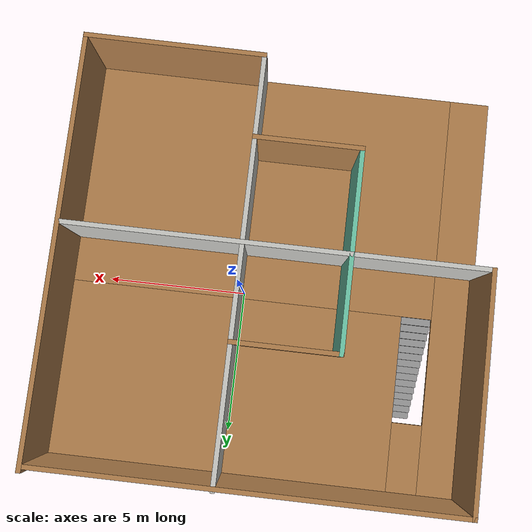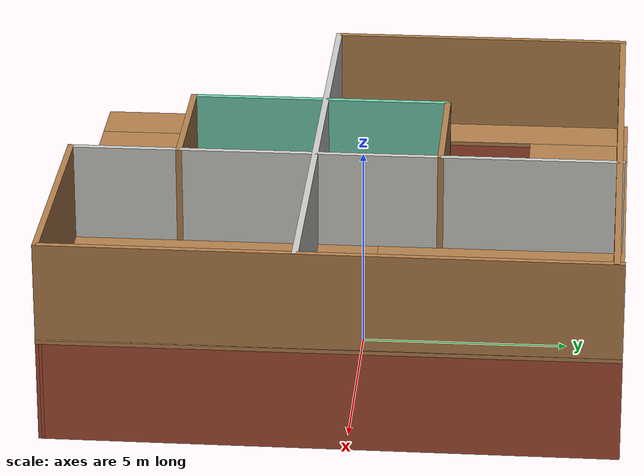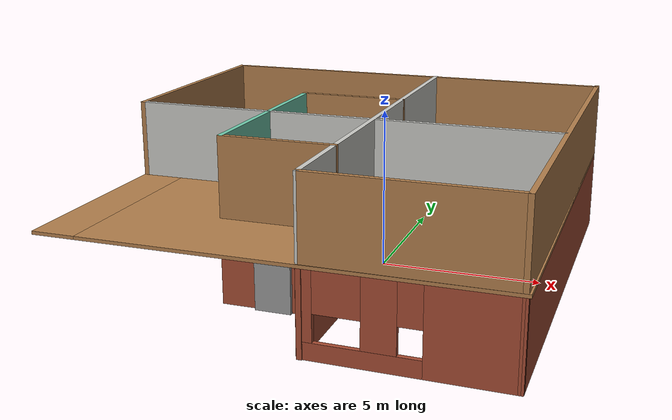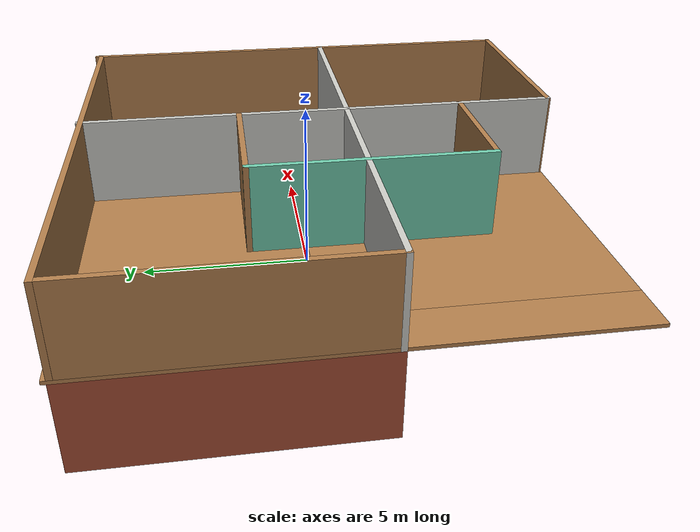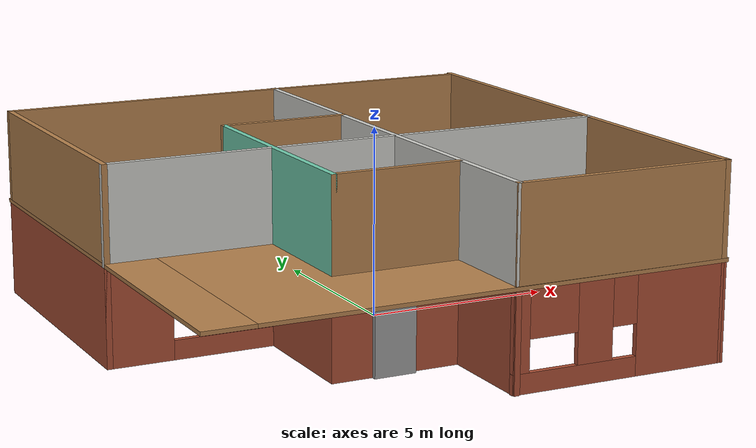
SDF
<?xml version='1.0'?>
<sdf version='1.6'>
  <model name='myFirstBuilding'>
    <pose frame=''>-0.986357 -0.430063 0 0 -0 0</pose>
    <link name='Door_8'>
      <collision name='Door_8_Collision'>
        <geometry>
          <box>
            <size>1.0955 0.2 2</size>
          </box>
        </geometry>
        <pose frame=''>0 0 1 0 -0 0</pose>
      </collision>
      <visual name='Door_8_Visual'>
        <pose frame=''>0 0 1 0 -0 0</pose>
        <geometry>
          <box>
            <size>1.0955 0.2 2</size>
          </box>
        </geometry>
        <material>
          <script>
            <uri>file://media/materials/scripts/gazebo.material</uri>
            <name>Gazebo/Grey</name>
          </script>
        </material>
      </visual>
      <pose frame=''>-0.826827 -4.15102 0 0 -0 0</pose>
    </link>
    <link name='Floor_1'>
      <pose frame=''>2e-05 3.6e-05 2.5 0 -0 0</pose>
      <visual name='Floor_1_Visual_0'>
        <pose frame=''>-6.11451 0 0.05 0 -0 0</pose>
        <geometry>
          <box>
            <size>1.31439 13.5997 0.1</size>
          </box>
        </geometry>
        <material>
          <script>
            <uri>file://media/materials/scripts/gazebo.material</uri>
            <name>Gazebo/Wood</name>
          </script>
          <ambient>1 1 1 1</ambient>
        </material>
        <meta>
          <layer>1</layer>
        </meta>
      </visual>
      <collision name='Floor_1_Collision_0'>
        <geometry>
          <box>
            <size>1.31439 13.5997 0.1</size>
          </box>
        </geometry>
        <pose frame=''>-6.11451 0 0.05 0 -0 0</pose>
      </collision>
      <visual name='Floor_1_Visual_1'>
        <pose frame=''>0.657195 -3.00018 0.05 0 -0 0</pose>
        <geometry>
          <box>
            <size>12.229 7.59934 0.1</size>
          </box>
        </geometry>
        <material>
          <script>
            <uri>file://media/materials/scripts/gazebo.material</uri>
            <name>Gazebo/Wood</name>
          </script>
          <ambient>1 1 1 1</ambient>
        </material>
        <meta>
          <layer>1</layer>
        </meta>
      </visual>
      <collision name='Floor_1_Collision_1'>
        <geometry>
          <box>
            <size>12.229 7.59934 0.1</size>
          </box>
        </geometry>
        <pose frame=''>0.657195 -3.00018 0.05 0 -0 0</pose>
      </collision>
      <visual name='Floor_1_Visual_2'>
        <pose frame=''>1.15719 3.79967 0.05 0 -0 0</pose>
        <geometry>
          <box>
            <size>11.229 6.00035 0.1</size>
          </box>
        </geometry>
        <material>
          <script>
            <uri>file://media/materials/scripts/gazebo.material</uri>
            <name>Gazebo/Wood</name>
          </script>
          <ambient>1 1 1 1</ambient>
        </material>
        <meta>
          <layer>1</layer>
        </meta>
      </visual>
      <collision name='Floor_1_Collision_2'>
        <geometry>
          <box>
            <size>11.229 6.00035 0.1</size>
          </box>
        </geometry>
        <pose frame=''>1.15719 3.79967 0.05 0 -0 0</pose>
      </collision>
      <visual name='Floor_1_Visual_3'>
        <pose frame=''>-4.95732 5.54967 0.05 0 -0 0</pose>
        <geometry>
          <box>
            <size>1 2.50035 0.1</size>
          </box>
        </geometry>
        <material>
          <script>
            <uri>file://media/materials/scripts/gazebo.material</uri>
            <name>Gazebo/Wood</name>
          </script>
          <ambient>1 1 1 1</ambient>
        </material>
        <meta>
          <layer>1</layer>
        </meta>
      </visual>
      <collision name='Floor_1_Collision_3'>
        <geometry>
          <box>
            <size>1 2.50035 0.1</size>
          </box>
        </geometry>
        <pose frame=''>-4.95732 5.54967 0.05 0 -0 0</pose>
      </collision>
    </link>
    <link name='Stairs_0'>
      <visual name='Stairs_0_Visual_0'>
        <pose frame=''>-4.9573 4.18286 0.083333 0 -0 0</pose>
        <geometry>
          <box>
            <size>1 0.233333 0.166667</size>
          </box>
        </geometry>
        <material>
          <script>
            <uri>file://media/materials/scripts/gazebo.material</uri>
            <name>Gazebo/Grey</name>
          </script>
          <ambient>1 1 1 1</ambient>
        </material>
        <meta>
          <layer>0</layer>
        </meta>
      </visual>
      <collision name='Stairs_0_Collision_0'>
        <geometry>
          <box>
            <size>1 0.233333 0.166667</size>
          </box>
        </geometry>
        <pose frame=''>-4.9573 4.18286 0.083333 0 -0 0</pose>
      </collision>
      <visual name='Stairs_0_Visual_1'>
        <pose frame=''>-4.9573 3.94953 0.25 0 -0 0</pose>
        <geometry>
          <box>
            <size>1 0.233333 0.166667</size>
          </box>
        </geometry>
        <material>
          <script>
            <uri>file://media/materials/scripts/gazebo.material</uri>
            <name>Gazebo/Grey</name>
          </script>
          <ambient>1 1 1 1</ambient>
        </material>
        <meta>
          <layer>0</layer>
        </meta>
      </visual>
      <collision name='Stairs_0_Collision_1'>
        <geometry>
          <box>
            <size>1 0.233333 0.166667</size>
          </box>
        </geometry>
        <pose frame=''>-4.9573 3.94953 0.25 0 -0 0</pose>
      </collision>
      <visual name='Stairs_0_Visual_2'>
        <pose frame=''>-4.9573 3.7162 0.416667 0 -0 0</pose>
        <geometry>
          <box>
            <size>1 0.233333 0.166667</size>
          </box>
        </geometry>
        <material>
          <script>
            <uri>file://media/materials/scripts/gazebo.material</uri>
            <name>Gazebo/Grey</name>
          </script>
          <ambient>1 1 1 1</ambient>
        </material>
        <meta>
          <layer>0</layer>
        </meta>
      </visual>
      <collision name='Stairs_0_Collision_2'>
        <geometry>
          <box>
            <size>1 0.233333 0.166667</size>
          </box>
        </geometry>
        <pose frame=''>-4.9573 3.7162 0.416667 0 -0 0</pose>
      </collision>
      <visual name='Stairs_0_Visual_3'>
        <pose frame=''>-4.9573 3.48286 0.583333 0 -0 0</pose>
        <geometry>
          <box>
            <size>1 0.233333 0.166667</size>
          </box>
        </geometry>
        <material>
          <script>
            <uri>file://media/materials/scripts/gazebo.material</uri>
            <name>Gazebo/Grey</name>
          </script>
          <ambient>1 1 1 1</ambient>
        </material>
        <meta>
          <layer>0</layer>
        </meta>
      </visual>
      <collision name='Stairs_0_Collision_3'>
        <geometry>
          <box>
            <size>1 0.233333 0.166667</size>
          </box>
        </geometry>
        <pose frame=''>-4.9573 3.48286 0.583333 0 -0 0</pose>
      </collision>
      <visual name='Stairs_0_Visual_4'>
        <pose frame=''>-4.9573 3.24953 0.75 0 -0 0</pose>
        <geometry>
          <box>
            <size>1 0.233333 0.166667</size>
          </box>
        </geometry>
        <material>
          <script>
            <uri>file://media/materials/scripts/gazebo.material</uri>
            <name>Gazebo/Grey</name>
          </script>
          <ambient>1 1 1 1</ambient>
        </material>
        <meta>
          <layer>0</layer>
        </meta>
      </visual>
      <collision name='Stairs_0_Collision_4'>
        <geometry>
          <box>
            <size>1 0.233333 0.166667</size>
          </box>
        </geometry>
        <pose frame=''>-4.9573 3.24953 0.75 0 -0 0</pose>
      </collision>
      <visual name='Stairs_0_Visual_5'>
        <pose frame=''>-4.9573 3.0162 0.916667 0 -0 0</pose>
        <geometry>
          <box>
            <size>1 0.233333 0.166667</size>
          </box>
        </geometry>
        <material>
          <script>
            <uri>file://media/materials/scripts/gazebo.material</uri>
            <name>Gazebo/Grey</name>
          </script>
          <ambient>1 1 1 1</ambient>
        </material>
        <meta>
          <layer>0</layer>
        </meta>
      </visual>
      <collision name='Stairs_0_Collision_5'>
        <geometry>
          <box>
            <size>1 0.233333 0.166667</size>
          </box>
        </geometry>
        <pose frame=''>-4.9573 3.0162 0.916667 0 -0 0</pose>
      </collision>
      <visual name='Stairs_0_Visual_6'>
        <pose frame=''>-4.9573 2.78287 1.08333 0 -0 0</pose>
        <geometry>
          <box>
            <size>1 0.233333 0.166667</size>
          </box>
        </geometry>
        <material>
          <script>
            <uri>file://media/materials/scripts/gazebo.material</uri>
            <name>Gazebo/Grey</name>
          </script>
          <ambient>1 1 1 1</ambient>
        </material>
        <meta>
          <layer>0</layer>
        </meta>
      </visual>
      <collision name='Stairs_0_Collision_6'>
        <geometry>
          <box>
            <size>1 0.233333 0.166667</size>
          </box>
        </geometry>
        <pose frame=''>-4.9573 2.78287 1.08333 0 -0 0</pose>
      </collision>
      <visual name='Stairs_0_Visual_7'>
        <pose frame=''>-4.9573 2.54953 1.25 0 -0 0</pose>
        <geometry>
          <box>
            <size>1 0.233333 0.166667</size>
          </box>
        </geometry>
        <material>
          <script>
            <uri>file://media/materials/scripts/gazebo.material</uri>
            <name>Gazebo/Grey</name>
          </script>
          <ambient>1 1 1 1</ambient>
        </material>
        <meta>
          <layer>0</layer>
        </meta>
      </visual>
      <collision name='Stairs_0_Collision_7'>
        <geometry>
          <box>
            <size>1 0.233333 0.166667</size>
          </box>
        </geometry>
        <pose frame=''>-4.9573 2.54953 1.25 0 -0 0</pose>
      </collision>
      <visual name='Stairs_0_Visual_8'>
        <pose frame=''>-4.9573 2.3162 1.41667 0 -0 0</pose>
        <geometry>
          <box>
            <size>1 0.233333 0.166667</size>
          </box>
        </geometry>
        <material>
          <script>
            <uri>file://media/materials/scripts/gazebo.material</uri>
            <name>Gazebo/Grey</name>
          </script>
          <ambient>1 1 1 1</ambient>
        </material>
        <meta>
          <layer>0</layer>
        </meta>
      </visual>
      <collision name='Stairs_0_Collision_8'>
        <geometry>
          <box>
            <size>1 0.233333 0.166667</size>
          </box>
        </geometry>
        <pose frame=''>-4.9573 2.3162 1.41667 0 -0 0</pose>
      </collision>
      <visual name='Stairs_0_Visual_9'>
        <pose frame=''>-4.9573 2.08286 1.58333 0 -0 0</pose>
        <geometry>
          <box>
            <size>1 0.233333 0.166667</size>
          </box>
        </geometry>
        <material>
          <script>
            <uri>file://media/materials/scripts/gazebo.material</uri>
            <name>Gazebo/Grey</name>
          </script>
          <ambient>1 1 1 1</ambient>
        </material>
        <meta>
          <layer>0</layer>
        </meta>
      </visual>
      <collision name='Stairs_0_Collision_9'>
        <geometry>
          <box>
            <size>1 0.233333 0.166667</size>
          </box>
        </geometry>
        <pose frame=''>-4.9573 2.08286 1.58333 0 -0 0</pose>
      </collision>
      <visual name='Stairs_0_Visual_10'>
        <pose frame=''>-4.9573 1.84953 1.75 0 -0 0</pose>
        <geometry>
          <box>
            <size>1 0.233333 0.166667</size>
          </box>
        </geometry>
        <material>
          <script>
            <uri>file://media/materials/scripts/gazebo.material</uri>
            <name>Gazebo/Grey</name>
          </script>
          <ambient>1 1 1 1</ambient>
        </material>
        <meta>
          <layer>0</layer>
        </meta>
      </visual>
      <collision name='Stairs_0_Collision_10'>
        <geometry>
          <box>
            <size>1 0.233333 0.166667</size>
          </box>
        </geometry>
        <pose frame=''>-4.9573 1.84953 1.75 0 -0 0</pose>
      </collision>
      <visual name='Stairs_0_Visual_11'>
        <pose frame=''>-4.9573 1.6162 1.91667 0 -0 0</pose>
        <geometry>
          <box>
            <size>1 0.233333 0.166667</size>
          </box>
        </geometry>
        <material>
          <script>
            <uri>file://media/materials/scripts/gazebo.material</uri>
            <name>Gazebo/Grey</name>
          </script>
          <ambient>1 1 1 1</ambient>
        </material>
        <meta>
          <layer>0</layer>
        </meta>
      </visual>
      <collision name='Stairs_0_Collision_11'>
        <geometry>
          <box>
            <size>1 0.233333 0.166667</size>
          </box>
        </geometry>
        <pose frame=''>-4.9573 1.6162 1.91667 0 -0 0</pose>
      </collision>
      <visual name='Stairs_0_Visual_12'>
        <pose frame=''>-4.9573 1.38287 2.08333 0 -0 0</pose>
        <geometry>
          <box>
            <size>1 0.233333 0.166667</size>
          </box>
        </geometry>
        <material>
          <script>
            <uri>file://media/materials/scripts/gazebo.material</uri>
            <name>Gazebo/Grey</name>
          </script>
          <ambient>1 1 1 1</ambient>
        </material>
        <meta>
          <layer>0</layer>
        </meta>
      </visual>
      <collision name='Stairs_0_Collision_12'>
        <geometry>
          <box>
            <size>1 0.233333 0.166667</size>
          </box>
        </geometry>
        <pose frame=''>-4.9573 1.38287 2.08333 0 -0 0</pose>
      </collision>
      <visual name='Stairs_0_Visual_13'>
        <pose frame=''>-4.9573 1.14953 2.25 0 -0 0</pose>
        <geometry>
          <box>
            <size>1 0.233333 0.166667</size>
          </box>
        </geometry>
        <material>
          <script>
            <uri>file://media/materials/scripts/gazebo.material</uri>
            <name>Gazebo/Grey</name>
          </script>
          <ambient>1 1 1 1</ambient>
        </material>
        <meta>
          <layer>0</layer>
        </meta>
      </visual>
      <collision name='Stairs_0_Collision_13'>
        <geometry>
          <box>
            <size>1 0.233333 0.166667</size>
          </box>
        </geometry>
        <pose frame=''>-4.9573 1.14953 2.25 0 -0 0</pose>
      </collision>
      <visual name='Stairs_0_Visual_14'>
        <pose frame=''>-4.9573 0.916198 2.41667 0 -0 0</pose>
        <geometry>
          <box>
            <size>1 0.233333 0.166667</size>
          </box>
        </geometry>
        <material>
          <script>
            <uri>file://media/materials/scripts/gazebo.material</uri>
            <name>Gazebo/Grey</name>
          </script>
          <ambient>1 1 1 1</ambient>
        </material>
        <meta>
          <layer>0</layer>
        </meta>
      </visual>
      <collision name='Stairs_0_Collision_14'>
        <geometry>
          <box>
            <size>1 0.233333 0.166667</size>
          </box>
        </geometry>
        <pose frame=''>-4.9573 0.916198 2.41667 0 -0 0</pose>
      </collision>
    </link>
    <link name='Wall_12'>
      <collision name='Wall_12_Collision'>
        <geometry>
          <box>
            <size>7.5 0.15 2.5</size>
          </box>
        </geometry>
        <pose frame=''>0 0 1.25 0 -0 0</pose>
      </collision>
      <visual name='Wall_12_Visual'>
        <pose frame=''>0 0 1.25 0 -0 0</pose>
        <geometry>
          <box>
            <size>7.5 0.15 2.5</size>
          </box>
        </geometry>
        <material>
          <script>
            <uri>file://media/materials/scripts/gazebo.material</uri>
            <name>Gazebo/Bricks</name>
          </script>
          <ambient>1 1 1 1</ambient>
        </material>
        <meta>
          <layer>0</layer>
        </meta>
      </visual>
      <pose frame=''>-6.69664 2.93206 0 0 -0 -1.5708</pose>
    </link>
    <link name='Wall_30'>
      <pose frame=''>-2.36419 -0.876727 0 0 -0 -1.5708</pose>
      <visual name='Wall_30_Visual_0'>
        <pose frame=''>-2.69851 0 1.25 0 -0 0</pose>
        <geometry>
          <box>
            <size>1.10297 0.15 2.5</size>
          </box>
        </geometry>
        <material>
          <script>
            <uri>file://media/materials/scripts/gazebo.material</uri>
            <name>Gazebo/Bricks</name>
          </script>
          <ambient>1 1 1 1</ambient>
        </material>
        <meta>
          <layer>0</layer>
        </meta>
      </visual>
      <collision name='Wall_30_Collision_0'>
        <geometry>
          <box>
            <size>1.10297 0.15 2.5</size>
          </box>
        </geometry>
        <pose frame=''>-2.69851 0 1.25 0 -0 0</pose>
      </collision>
      <visual name='Wall_30_Visual_1'>
        <pose frame=''>1.10795 0 1.25 0 -0 0</pose>
        <geometry>
          <box>
            <size>4.2841 0.15 2.5</size>
          </box>
        </geometry>
        <material>
          <script>
            <uri>file://media/materials/scripts/gazebo.material</uri>
            <name>Gazebo/Bricks</name>
          </script>
          <ambient>1 1 1 1</ambient>
        </material>
        <meta>
          <layer>0</layer>
        </meta>
      </visual>
      <collision name='Wall_30_Collision_1'>
        <geometry>
          <box>
            <size>4.2841 0.15 2.5</size>
          </box>
        </geometry>
        <pose frame=''>1.10795 0 1.25 0 -0 0</pose>
      </collision>
      <visual name='Wall_30_Visual_2'>
        <pose frame=''>-1.59057 0 2.25 0 -0 0</pose>
        <geometry>
          <box>
            <size>1.11292 0.15 0.5</size>
          </box>
        </geometry>
        <material>
          <script>
            <uri>file://media/materials/scripts/gazebo.material</uri>
            <name>Gazebo/Bricks</name>
          </script>
          <ambient>1 1 1 1</ambient>
        </material>
        <meta>
          <layer>0</layer>
        </meta>
      </visual>
      <collision name='Wall_30_Collision_2'>
        <geometry>
          <box>
            <size>1.11292 0.15 0.5</size>
          </box>
        </geometry>
        <pose frame=''>-1.59057 0 2.25 0 -0 0</pose>
      </collision>
    </link>
    <link name='Wall_31'>
      <collision name='Wall_31_Collision'>
        <geometry>
          <box>
            <size>3.5 0.15 2.5</size>
          </box>
        </geometry>
        <pose frame=''>0 0 1.25 0 -0 0</pose>
      </collision>
      <visual name='Wall_31_Visual'>
        <pose frame=''>0 0 1.25 0 -0 0</pose>
        <geometry>
          <box>
            <size>3.5 0.15 2.5</size>
          </box>
        </geometry>
        <material>
          <script>
            <uri>file://media/materials/scripts/gazebo.material</uri>
            <name>Gazebo/Bricks</name>
          </script>
          <ambient>1 1 1 1</ambient>
        </material>
        <meta>
          <layer>0</layer>
        </meta>
      </visual>
      <pose frame=''>-0.689193 -4.05173 0 0 -0 0</pose>
    </link>
    <link name='Wall_33'>
      <pose frame=''>-0.021512 -0.742804 0 0 -0 2e-05</pose>
      <visual name='Wall_33_Visual_0'>
        <pose frame=''>-5.89032 0 1.25 0 -0 0</pose>
        <geometry>
          <box>
            <size>1.71937 0.15 2.5</size>
          </box>
        </geometry>
        <material>
          <script>
            <uri>file://media/materials/scripts/gazebo.material</uri>
            <name>Gazebo/Bricks</name>
          </script>
          <ambient>1 1 1 1</ambient>
        </material>
        <meta>
          <layer>0</layer>
        </meta>
      </visual>
      <collision name='Wall_33_Collision_0'>
        <geometry>
          <box>
            <size>1.71937 0.15 2.5</size>
          </box>
        </geometry>
        <pose frame=''>-5.89032 0 1.25 0 -0 0</pose>
      </collision>
      <visual name='Wall_33_Visual_1'>
        <pose frame=''>1.26245 0 1.25 0 -0 0</pose>
        <geometry>
          <box>
            <size>3.27767 0.15 2.5</size>
          </box>
        </geometry>
        <material>
          <script>
            <uri>file://media/materials/scripts/gazebo.material</uri>
            <name>Gazebo/Bricks</name>
          </script>
          <ambient>1 1 1 1</ambient>
        </material>
        <meta>
          <layer>0</layer>
        </meta>
      </visual>
      <collision name='Wall_33_Collision_1'>
        <geometry>
          <box>
            <size>3.27767 0.15 2.5</size>
          </box>
        </geometry>
        <pose frame=''>1.26245 0 1.25 0 -0 0</pose>
      </collision>
      <visual name='Wall_33_Visual_2'>
        <pose frame=''>5.62367 0 1.25 0 -0 0</pose>
        <geometry>
          <box>
            <size>2.25267 0.15 2.5</size>
          </box>
        </geometry>
        <material>
          <script>
            <uri>file://media/materials/scripts/gazebo.material</uri>
            <name>Gazebo/Bricks</name>
          </script>
          <ambient>1 1 1 1</ambient>
        </material>
        <meta>
          <layer>0</layer>
        </meta>
      </visual>
      <collision name='Wall_33_Collision_2'>
        <geometry>
          <box>
            <size>2.25267 0.15 2.5</size>
          </box>
        </geometry>
        <pose frame=''>5.62367 0 1.25 0 -0 0</pose>
      </collision>
      <visual name='Wall_33_Visual_3'>
        <pose frame=''>-3.40352 0 0.25 0 -0 0</pose>
        <geometry>
          <box>
            <size>3.25423 0.15 0.5</size>
          </box>
        </geometry>
        <material>
          <script>
            <uri>file://media/materials/scripts/gazebo.material</uri>
            <name>Gazebo/Bricks</name>
          </script>
          <ambient>1 1 1 1</ambient>
        </material>
        <meta>
          <layer>0</layer>
        </meta>
      </visual>
      <collision name='Wall_33_Collision_3'>
        <geometry>
          <box>
            <size>3.25423 0.15 0.5</size>
          </box>
        </geometry>
        <pose frame=''>-3.40352 0 0.25 0 -0 0</pose>
      </collision>
      <visual name='Wall_33_Visual_4'>
        <pose frame=''>-3.00352 0 1.5 0 -0 0</pose>
        <geometry>
          <box>
            <size>2.45423 0.15 2</size>
          </box>
        </geometry>
        <material>
          <script>
            <uri>file://media/materials/scripts/gazebo.material</uri>
            <name>Gazebo/Bricks</name>
          </script>
          <ambient>1 1 1 1</ambient>
        </material>
        <meta>
          <layer>0</layer>
        </meta>
      </visual>
      <collision name='Wall_33_Collision_4'>
        <geometry>
          <box>
            <size>2.45423 0.15 2</size>
          </box>
        </geometry>
        <pose frame=''>-3.00352 0 1.5 0 -0 0</pose>
      </collision>
      <visual name='Wall_33_Visual_5'>
        <pose frame=''>-4.63063 0 1.9 0 -0 0</pose>
        <geometry>
          <box>
            <size>0.8 0.15 1.2</size>
          </box>
        </geometry>
        <material>
          <script>
            <uri>file://media/materials/scripts/gazebo.material</uri>
            <name>Gazebo/Bricks</name>
          </script>
          <ambient>1 1 1 1</ambient>
        </material>
        <meta>
          <layer>0</layer>
        </meta>
      </visual>
      <collision name='Wall_33_Collision_5'>
        <geometry>
          <box>
            <size>0.8 0.15 1.2</size>
          </box>
        </geometry>
        <pose frame=''>-4.63063 0 1.9 0 -0 0</pose>
      </collision>
      <visual name='Wall_33_Visual_6'>
        <pose frame=''>3.69931 0 2.25 0 -0 0</pose>
        <geometry>
          <box>
            <size>1.59605 0.15 0.5</size>
          </box>
        </geometry>
        <material>
          <script>
            <uri>file://media/materials/scripts/gazebo.material</uri>
            <name>Gazebo/Bricks</name>
          </script>
          <ambient>1 1 1 1</ambient>
        </material>
        <meta>
          <layer>0</layer>
        </meta>
      </visual>
      <collision name='Wall_33_Collision_6'>
        <geometry>
          <box>
            <size>1.59605 0.15 0.5</size>
          </box>
        </geometry>
        <pose frame=''>3.69931 0 2.25 0 -0 0</pose>
      </collision>
      <visual name='Wall_33_Visual_7'>
        <pose frame=''>-1.07639 0 2.25 0 -0 0</pose>
        <geometry>
          <box>
            <size>1.40002 0.15 0.5</size>
          </box>
        </geometry>
        <material>
          <script>
            <uri>file://media/materials/scripts/gazebo.material</uri>
            <name>Gazebo/Bricks</name>
          </script>
          <ambient>1 1 1 1</ambient>
        </material>
        <meta>
          <layer>0</layer>
        </meta>
      </visual>
      <collision name='Wall_33_Collision_7'>
        <geometry>
          <box>
            <size>1.40002 0.15 0.5</size>
          </box>
        </geometry>
        <pose frame=''>-1.07639 0 2.25 0 -0 0</pose>
      </collision>
    </link>
    <link name='Wall_45'>
      <collision name='Wall_45_Collision'>
        <geometry>
          <box>
            <size>13.5986 0.15 2.5</size>
          </box>
        </geometry>
        <pose frame=''>0 0 1.25 0 -0 0</pose>
      </collision>
      <visual name='Wall_45_Visual'>
        <pose frame=''>0 0 1.25 0 -0 0</pose>
        <geometry>
          <box>
            <size>13.5986 0.15 2.5</size>
          </box>
        </geometry>
        <material>
          <script>
            <uri>file://media/materials/scripts/gazebo.material</uri>
            <name>Gazebo/Bricks</name>
          </script>
          <ambient>1 1 1 1</ambient>
        </material>
        <meta>
          <layer>0</layer>
        </meta>
      </visual>
      <pose frame=''>6.66674 0.000256 0 0 -0 -1.57521</pose>
    </link>
    <link name='Wall_47'>
      <pose frame=''>3.80092 -6.68921 0 0 -0 3.12934</pose>
      <visual name='Wall_47_Visual_0'>
        <pose frame=''>-1.66555 0 1.25 0 -0 0</pose>
        <geometry>
          <box>
            <size>2.49156 0.15 2.5</size>
          </box>
        </geometry>
        <material>
          <script>
            <uri>file://media/materials/scripts/gazebo.material</uri>
            <name>Gazebo/Bricks</name>
          </script>
          <ambient>1 1 1 1</ambient>
        </material>
        <meta>
          <layer>0</layer>
        </meta>
      </visual>
      <collision name='Wall_47_Collision_0'>
        <geometry>
          <box>
            <size>2.49156 0.15 2.5</size>
          </box>
        </geometry>
        <pose frame=''>-1.66555 0 1.25 0 -0 0</pose>
      </collision>
      <visual name='Wall_47_Visual_1'>
        <pose frame=''>1.24578 0 0.25 0 -0 0</pose>
        <geometry>
          <box>
            <size>3.33111 0.15 0.5</size>
          </box>
        </geometry>
        <material>
          <script>
            <uri>file://media/materials/scripts/gazebo.material</uri>
            <name>Gazebo/Bricks</name>
          </script>
          <ambient>1 1 1 1</ambient>
        </material>
        <meta>
          <layer>0</layer>
        </meta>
      </visual>
      <collision name='Wall_47_Collision_1'>
        <geometry>
          <box>
            <size>3.33111 0.15 0.5</size>
          </box>
        </geometry>
        <pose frame=''>1.24578 0 0.25 0 -0 0</pose>
      </collision>
      <visual name='Wall_47_Visual_2'>
        <pose frame=''>0.713583 0 1.5 0 -0 0</pose>
        <geometry>
          <box>
            <size>0.945114 0.15 2</size>
          </box>
        </geometry>
        <material>
          <script>
            <uri>file://media/materials/scripts/gazebo.material</uri>
            <name>Gazebo/Bricks</name>
          </script>
          <ambient>1 1 1 1</ambient>
        </material>
        <meta>
          <layer>0</layer>
        </meta>
      </visual>
      <collision name='Wall_47_Collision_2'>
        <geometry>
          <box>
            <size>0.945114 0.15 2</size>
          </box>
        </geometry>
        <pose frame=''>0.713583 0 1.5 0 -0 0</pose>
      </collision>
      <visual name='Wall_47_Visual_3'>
        <pose frame=''>2.6934 0 1.5 0 -0 0</pose>
        <geometry>
          <box>
            <size>0.435871 0.15 2</size>
          </box>
        </geometry>
        <material>
          <script>
            <uri>file://media/materials/scripts/gazebo.material</uri>
            <name>Gazebo/Bricks</name>
          </script>
          <ambient>1 1 1 1</ambient>
        </material>
        <meta>
          <layer>0</layer>
        </meta>
      </visual>
      <collision name='Wall_47_Collision_3'>
        <geometry>
          <box>
            <size>0.435871 0.15 2</size>
          </box>
        </geometry>
        <pose frame=''>2.6934 0 1.5 0 -0 0</pose>
      </collision>
      <visual name='Wall_47_Visual_4'>
        <pose frame=''>-0.089374 0 1.9 0 -0 0</pose>
        <geometry>
          <box>
            <size>0.660801 0.15 1.2</size>
          </box>
        </geometry>
        <material>
          <script>
            <uri>file://media/materials/scripts/gazebo.material</uri>
            <name>Gazebo/Bricks</name>
          </script>
          <ambient>1 1 1 1</ambient>
        </material>
        <meta>
          <layer>0</layer>
        </meta>
      </visual>
      <collision name='Wall_47_Collision_4'>
        <geometry>
          <box>
            <size>0.660801 0.15 1.2</size>
          </box>
        </geometry>
        <pose frame=''>-0.089374 0 1.9 0 -0 0</pose>
      </collision>
      <visual name='Wall_47_Visual_5'>
        <pose frame=''>1.8308 0 1.9 0 -0 0</pose>
        <geometry>
          <box>
            <size>1.28933 0.15 1.2</size>
          </box>
        </geometry>
        <material>
          <script>
            <uri>file://media/materials/scripts/gazebo.material</uri>
            <name>Gazebo/Bricks</name>
          </script>
          <ambient>1 1 1 1</ambient>
        </material>
        <meta>
          <layer>0</layer>
        </meta>
      </visual>
      <collision name='Wall_47_Collision_5'>
        <geometry>
          <box>
            <size>1.28933 0.15 1.2</size>
          </box>
        </geometry>
        <pose frame=''>1.8308 0 1.9 0 -0 0</pose>
      </collision>
    </link>
    <link name='Wall_48'>
      <pose frame=''>0.9848 -0.01946 0 0 -0 1.5708</pose>
      <visual name='Wall_48_Visual_0'>
        <pose frame=''>-3.29569 0 1.25 0 -0 0</pose>
        <geometry>
          <box>
            <size>6.90861 0.15 2.5</size>
          </box>
        </geometry>
        <material>
          <script>
            <uri>file://media/materials/scripts/gazebo.material</uri>
            <name>Gazebo/Bricks</name>
          </script>
          <ambient>1 1 1 1</ambient>
        </material>
        <meta>
          <layer>0</layer>
        </meta>
      </visual>
      <collision name='Wall_48_Collision_0'>
        <geometry>
          <box>
            <size>6.90861 0.15 2.5</size>
          </box>
        </geometry>
        <pose frame=''>-3.29569 0 1.25 0 -0 0</pose>
      </collision>
      <visual name='Wall_48_Visual_1'>
        <pose frame=''>4.04344 0 1.25 0 -0 0</pose>
        <geometry>
          <box>
            <size>5.41312 0.15 2.5</size>
          </box>
        </geometry>
        <material>
          <script>
            <uri>file://media/materials/scripts/gazebo.material</uri>
            <name>Gazebo/Bricks</name>
          </script>
          <ambient>1 1 1 1</ambient>
        </material>
        <meta>
          <layer>0</layer>
        </meta>
      </visual>
      <collision name='Wall_48_Collision_1'>
        <geometry>
          <box>
            <size>5.41312 0.15 2.5</size>
          </box>
        </geometry>
        <pose frame=''>4.04344 0 1.25 0 -0 0</pose>
      </collision>
      <visual name='Wall_48_Visual_2'>
        <pose frame=''>0.747745 0 2.25 0 -0 0</pose>
        <geometry>
          <box>
            <size>1.17826 0.15 0.5</size>
          </box>
        </geometry>
        <material>
          <script>
            <uri>file://media/materials/scripts/gazebo.material</uri>
            <name>Gazebo/Bricks</name>
          </script>
          <ambient>1 1 1 1</ambient>
        </material>
        <meta>
          <layer>0</layer>
        </meta>
      </visual>
      <collision name='Wall_48_Collision_2'>
        <geometry>
          <box>
            <size>1.17826 0.15 0.5</size>
          </box>
        </geometry>
        <pose frame=''>0.747745 0 2.25 0 -0 0</pose>
      </collision>
    </link>
    <link name='Wall_5'>
      <collision name='Wall_5_Collision'>
        <geometry>
          <box>
            <size>3.5 0.15 2.5</size>
          </box>
        </geometry>
        <pose frame=''>0 0 1.25 0 -0 0</pose>
      </collision>
      <visual name='Wall_5_Visual'>
        <pose frame=''>0 0 1.25 0 -0 0</pose>
        <geometry>
          <box>
            <size>3.5 0.15 2.5</size>
          </box>
        </geometry>
        <material>
          <script>
            <uri>file://media/materials/scripts/gazebo.material</uri>
            <name>Gazebo/Bricks</name>
          </script>
          <ambient>1 1 1 1</ambient>
        </material>
        <meta>
          <layer>0</layer>
        </meta>
      </visual>
      <pose frame=''>-0.689193 2.29827 0 0 -0 0</pose>
    </link>
    <link name='Wall_50'>
      <collision name='Wall_50_Collision'>
        <geometry>
          <box>
            <size>13.5 0.15 2.5</size>
          </box>
        </geometry>
        <pose frame=''>0 0 1.25 0 -0 0</pose>
      </collision>
      <visual name='Wall_50_Visual'>
        <pose frame=''>0 0 1.25 0 -0 0</pose>
        <geometry>
          <box>
            <size>13.5 0.15 2.5</size>
          </box>
        </geometry>
        <material>
          <script>
            <uri>file://media/materials/scripts/gazebo.material</uri>
            <name>Gazebo/Bricks</name>
          </script>
          <ambient>1 1 1 1</ambient>
        </material>
        <meta>
          <layer>0</layer>
        </meta>
      </visual>
      <pose frame=''>-0.021512 6.6072 0 0 -0 2e-05</pose>
    </link>
    <link name='Wall_52'>
      <collision name='Wall_52_Collision'>
        <geometry>
          <box>
            <size>3.5 0.15 2.5</size>
          </box>
        </geometry>
        <pose frame=''>0 0 1.25 0 -0 0</pose>
      </collision>
      <visual name='Wall_52_Visual'>
        <pose frame=''>0 0 1.25 0 -0 0</pose>
        <geometry>
          <box>
            <size>3.5 0.15 2.5</size>
          </box>
        </geometry>
        <material>
          <script>
            <uri>file://media/materials/scripts/gazebo.material</uri>
            <name>Gazebo/Wood</name>
          </script>
          <ambient>0.435294 0.796078 0.67451 1</ambient>
        </material>
        <meta>
          <layer>1</layer>
        </meta>
      </visual>
      <pose frame=''>-0.689193 2.29827 2.5 0 -0 0</pose>
    </link>
    <link name='Wall_53'>
      <collision name='Wall_53_Collision'>
        <geometry>
          <box>
            <size>7.5 0.15 2.5</size>
          </box>
        </geometry>
        <pose frame=''>0 0 1.25 0 -0 0</pose>
      </collision>
      <visual name='Wall_53_Visual'>
        <pose frame=''>0 0 1.25 0 -0 0</pose>
        <geometry>
          <box>
            <size>7.5 0.15 2.5</size>
          </box>
        </geometry>
        <material>
          <script>
            <uri>file://media/materials/scripts/gazebo.material</uri>
            <name>Gazebo/Wood</name>
          </script>
          <ambient>1 1 1 1</ambient>
        </material>
        <meta>
          <layer>1</layer>
        </meta>
      </visual>
      <pose frame=''>-6.69664 2.93206 2.5 0 -0 -1.5708</pose>
    </link>
    <link name='Wall_54'>
      <collision name='Wall_54_Collision'>
        <geometry>
          <box>
            <size>6.5 0.15 2.5</size>
          </box>
        </geometry>
        <pose frame=''>0 0 1.25 0 -0 0</pose>
      </collision>
      <visual name='Wall_54_Visual'>
        <pose frame=''>0 0 1.25 0 -0 0</pose>
        <geometry>
          <box>
            <size>6.5 0.15 2.5</size>
          </box>
        </geometry>
        <material>
          <script>
            <uri>file://media/materials/scripts/gazebo.material</uri>
            <name>Gazebo/Grey</name>
          </script>
          <ambient>0.435294 0.796078 0.67451 1</ambient>
        </material>
        <meta>
          <layer>1</layer>
        </meta>
      </visual>
      <pose frame=''>-2.36419 -0.876727 2.5 0 -0 -1.5708</pose>
    </link>
    <link name='Wall_55'>
      <collision name='Wall_55_Collision'>
        <geometry>
          <box>
            <size>3.5 0.15 2.5</size>
          </box>
        </geometry>
        <pose frame=''>0 0 1.25 0 -0 0</pose>
      </collision>
      <visual name='Wall_55_Visual'>
        <pose frame=''>0 0 1.25 0 -0 0</pose>
        <geometry>
          <box>
            <size>3.5 0.15 2.5</size>
          </box>
        </geometry>
        <material>
          <script>
            <uri>file://media/materials/scripts/gazebo.material</uri>
            <name>Gazebo/Wood</name>
          </script>
          <ambient>0.435294 0.796078 0.67451 1</ambient>
        </material>
        <meta>
          <layer>1</layer>
        </meta>
      </visual>
      <pose frame=''>-0.689193 -4.05173 2.5 0 -0 0</pose>
    </link>
    <link name='Wall_56'>
      <collision name='Wall_56_Collision'>
        <geometry>
          <box>
            <size>13.5003 0.15 2.5</size>
          </box>
        </geometry>
        <pose frame=''>0 0 1.25 0 -0 0</pose>
      </collision>
      <visual name='Wall_56_Visual'>
        <pose frame=''>0 0 1.25 0 -0 0</pose>
        <geometry>
          <box>
            <size>13.5003 0.15 2.5</size>
          </box>
        </geometry>
        <material>
          <script>
            <uri>file://media/materials/scripts/gazebo.material</uri>
            <name>Gazebo/CeilingTiled</name>
          </script>
          <ambient>1 1 1 1</ambient>
        </material>
        <meta>
          <layer>1</layer>
        </meta>
      </visual>
      <pose frame=''>-0.021643 -0.742937 2.5 0 -0 0</pose>
    </link>
    <link name='Wall_57'>
      <collision name='Wall_57_Collision'>
        <geometry>
          <box>
            <size>13.5986 0.15 2.5</size>
          </box>
        </geometry>
        <pose frame=''>0 0 1.25 0 -0 0</pose>
      </collision>
      <visual name='Wall_57_Visual'>
        <pose frame=''>0 0 1.25 0 -0 0</pose>
        <geometry>
          <box>
            <size>13.5986 0.15 2.5</size>
          </box>
        </geometry>
        <material>
          <script>
            <uri>file://media/materials/scripts/gazebo.material</uri>
            <name>Gazebo/Wood</name>
          </script>
          <ambient>1 1 1 1</ambient>
        </material>
        <meta>
          <layer>1</layer>
        </meta>
      </visual>
      <pose frame=''>6.66686 6.3e-05 2.5 0 -0 -1.57518</pose>
    </link>
    <link name='Wall_58'>
      <collision name='Wall_58_Collision'>
        <geometry>
          <box>
            <size>5.80276 0.15 2.5</size>
          </box>
        </geometry>
        <pose frame=''>0 0 1.25 0 -0 0</pose>
      </collision>
      <visual name='Wall_58_Visual'>
        <pose frame=''>0 0 1.25 0 -0 0</pose>
        <geometry>
          <box>
            <size>5.80276 0.15 2.5</size>
          </box>
        </geometry>
        <material>
          <script>
            <uri>file://media/materials/scripts/gazebo.material</uri>
            <name>Gazebo/Wood</name>
          </script>
          <ambient>1 1 1 1</ambient>
        </material>
        <meta>
          <layer>1</layer>
        </meta>
      </visual>
      <pose frame=''>3.81086 -6.70944 2.5 0 -0 3.13646</pose>
    </link>
    <link name='Wall_59'>
      <collision name='Wall_59_Collision'>
        <geometry>
          <box>
            <size>13.5 0.15 2.5</size>
          </box>
        </geometry>
        <pose frame=''>0 0 1.25 0 -0 0</pose>
      </collision>
      <visual name='Wall_59_Visual'>
        <pose frame=''>0 0 1.25 0 -0 0</pose>
        <geometry>
          <box>
            <size>13.5 0.15 2.5</size>
          </box>
        </geometry>
        <material>
          <script>
            <uri>file://media/materials/scripts/gazebo.material</uri>
            <name>Gazebo/CeilingTiled</name>
          </script>
          <ambient>1 1 1 1</ambient>
        </material>
        <meta>
          <layer>1</layer>
        </meta>
      </visual>
      <pose frame=''>0.984357 -0.019937 2.5 0 -0 1.5708</pose>
    </link>
    <link name='Wall_60'>
      <collision name='Wall_60_Collision'>
        <geometry>
          <box>
            <size>13.5003 0.15 2.5</size>
          </box>
        </geometry>
        <pose frame=''>0 0 1.25 0 -0 0</pose>
      </collision>
      <visual name='Wall_60_Visual'>
        <pose frame=''>0 0 1.25 0 -0 0</pose>
        <geometry>
          <box>
            <size>13.5003 0.15 2.5</size>
          </box>
        </geometry>
        <material>
          <script>
            <uri>file://media/materials/scripts/gazebo.material</uri>
            <name>Gazebo/Wood</name>
          </script>
          <ambient>1 1 1 1</ambient>
        </material>
        <meta>
          <layer>1</layer>
        </meta>
      </visual>
      <pose frame=''>-0.021512 6.6072 2.5 0 -0 2e-05</pose>
    </link>
    <static>1</static>
  </model>
</sdf>
